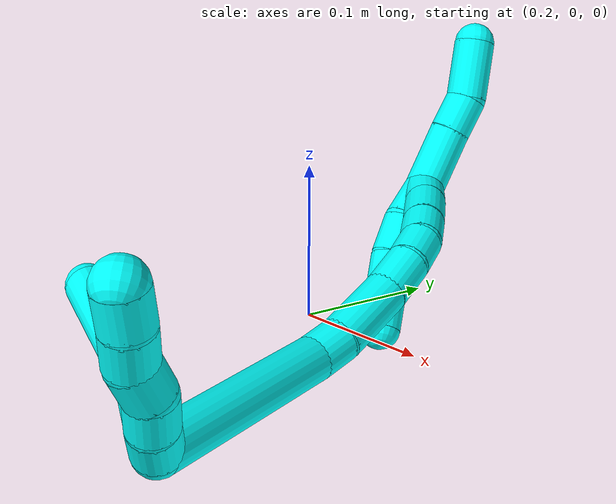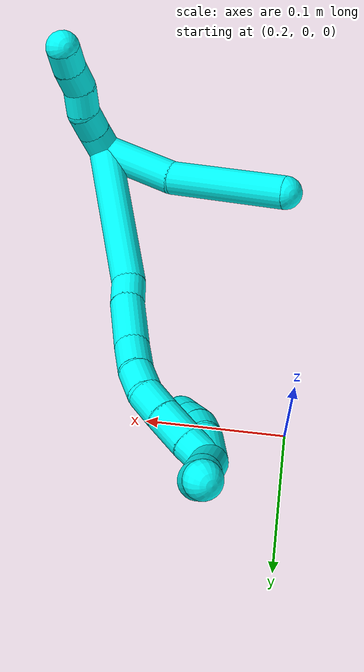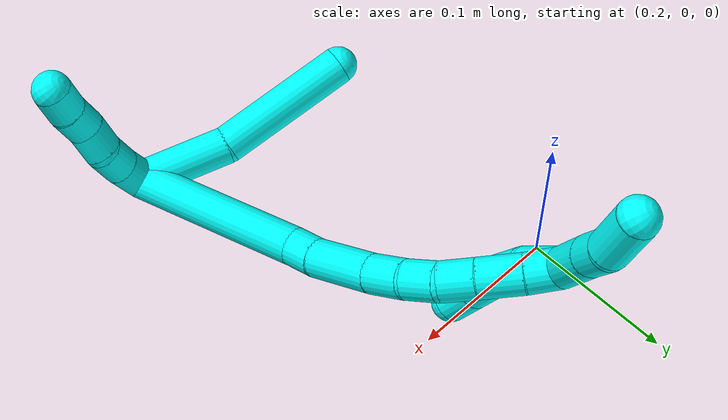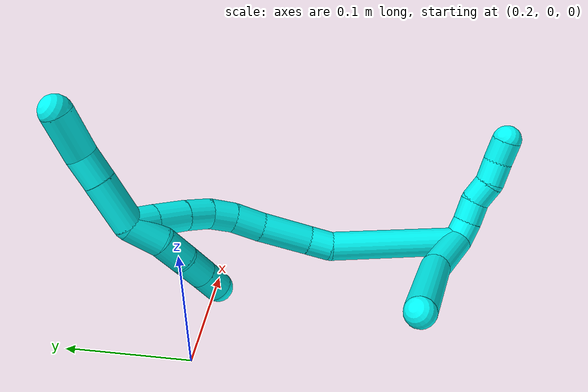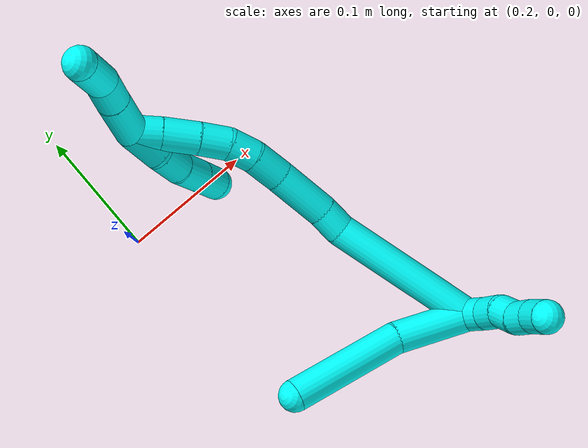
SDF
<sdf version="1.7">
 <world name="default">
  <model name="3">
   <static>0</static>
   <link name="3">
    <collision name="collision-cylinder-e_1_2_8">
     <pose>0.016053 0.011861 -0.022158 -2.65009 0.568402 -1.7226</pose>
     <geometry><cylinder><radius>0.0125</radius><length>0.059644</length></cylinder></geometry>
     <surface>
      <friction><ode><mu>1.16</mu><mu2>1.16</mu2><slip1>0</slip1><slip2>0</slip2></ode></friction>
      <contact><ode><kp>1e+06</kp><kd>1</kd><max_vel>0</max_vel><min_depth>0.001</min_depth></ode></contact>
     </surface>
    </collision>
    <visual name="visual-cylinder-e_1_2_8">
     <pose>0.016053 0.011861 -0.022158 -2.65009 0.568402 -1.7226</pose>
     <geometry><cylinder><radius>0.0125</radius><length>0.059644</length></cylinder></geometry>
     <material><ambient>0.003922 1 0.996078 1</ambient></material>
    </visual>
    <collision name="collision-cylinder-e_2_8_6">
     <pose>0.060919 0.032151 -0.078076 -2.89694 0.691621 -2.48392</pose>
     <geometry><cylinder><radius>0.0125</radius><length>0.090356</length></cylinder></geometry>
     <surface>
      <friction><ode><mu>1.16</mu><mu2>1.16</mu2><slip1>0</slip1><slip2>0</slip2></ode></friction>
      <contact><ode><kp>1e+06</kp><kd>1</kd><max_vel>0</max_vel><min_depth>0.001</min_depth></ode></contact>
     </surface>
    </collision>
    <visual name="visual-cylinder-e_2_8_6">
     <pose>0.060919 0.032151 -0.078076 -2.89694 0.691621 -2.48392</pose>
     <geometry><cylinder><radius>0.0125</radius><length>0.090356</length></cylinder></geometry>
     <material><ambient>0.003922 1 0.996078 1</ambient></material>
    </visual>
    <collision name="collision-cylinder-e_1_2_9">
     <pose>-0.003895 -0.009018 -0.001871 1.77541 -0.400126 -0.488408</pose>
     <geometry><cylinder><radius>0.0125</radius><length>0.02</length></cylinder></geometry>
     <surface>
      <friction><ode><mu>1.16</mu><mu2>1.16</mu2><slip1>0</slip1><slip2>0</slip2></ode></friction>
      <contact><ode><kp>1e+06</kp><kd>1</kd><max_vel>0</max_vel><min_depth>0.001</min_depth></ode></contact>
     </surface>
    </collision>
    <visual name="visual-cylinder-e_1_2_9">
     <pose>-0.003895 -0.009018 -0.001871 1.77541 -0.400126 -0.488408</pose>
     <geometry><cylinder><radius>0.0125</radius><length>0.02</length></cylinder></geometry>
     <material><ambient>0.003922 1 0.996078 1</ambient></material>
    </visual>
    <collision name="collision-cylinder-e_2_9_10">
     <pose>-0.011739 -0.026561 -0.007168 1.95287 -0.405855 -0.591025</pose>
     <geometry><cylinder><radius>0.0125</radius><length>0.02</length></cylinder></geometry>
     <surface>
      <friction><ode><mu>1.16</mu><mu2>1.16</mu2><slip1>0</slip1><slip2>0</slip2></ode></friction>
      <contact><ode><kp>1e+06</kp><kd>1</kd><max_vel>0</max_vel><min_depth>0.001</min_depth></ode></contact>
     </surface>
    </collision>
    <visual name="visual-cylinder-e_2_9_10">
     <pose>-0.011739 -0.026561 -0.007168 1.95287 -0.405855 -0.591025</pose>
     <geometry><cylinder><radius>0.0125</radius><length>0.02</length></cylinder></geometry>
     <material><ambient>0.003922 1 0.996078 1</ambient></material>
    </visual>
    <collision name="collision-cylinder-e_3_10_11">
     <pose>-0.016389 -0.044634 -0.013482 1.86456 -0.070232 -0.09459</pose>
     <geometry><cylinder><radius>0.0125</radius><length>0.02</length></cylinder></geometry>
     <surface>
      <friction><ode><mu>1.16</mu><mu2>1.16</mu2><slip1>0</slip1><slip2>0</slip2></ode></friction>
      <contact><ode><kp>1e+06</kp><kd>1</kd><max_vel>0</max_vel><min_depth>0.001</min_depth></ode></contact>
     </surface>
    </collision>
    <visual name="visual-cylinder-e_3_10_11">
     <pose>-0.016389 -0.044634 -0.013482 1.86456 -0.070232 -0.09459</pose>
     <geometry><cylinder><radius>0.0125</radius><length>0.02</length></cylinder></geometry>
     <material><ambient>0.003922 1 0.996078 1</ambient></material>
    </visual>
    <collision name="collision-cylinder-e_4_11_12">
     <pose>-0.020867 -0.062712 -0.019974 1.97052 -0.387237 -0.574994</pose>
     <geometry><cylinder><radius>0.0125</radius><length>0.02</length></cylinder></geometry>
     <surface>
      <friction><ode><mu>1.16</mu><mu2>1.16</mu2><slip1>0</slip1><slip2>0</slip2></ode></friction>
      <contact><ode><kp>1e+06</kp><kd>1</kd><max_vel>0</max_vel><min_depth>0.001</min_depth></ode></contact>
     </surface>
    </collision>
    <visual name="visual-cylinder-e_4_11_12">
     <pose>-0.020867 -0.062712 -0.019974 1.97052 -0.387237 -0.574994</pose>
     <geometry><cylinder><radius>0.0125</radius><length>0.02</length></cylinder></geometry>
     <material><ambient>0.003922 1 0.996078 1</ambient></material>
    </visual>
    <collision name="collision-cylinder-e_5_12_5">
     <pose>-0.027337 -0.079711 -0.028161 2.06678 -0.272774 -0.452711</pose>
     <geometry><cylinder><radius>0.0125</radius><length>0.02</length></cylinder></geometry>
     <surface>
      <friction><ode><mu>1.16</mu><mu2>1.16</mu2><slip1>0</slip1><slip2>0</slip2></ode></friction>
      <contact><ode><kp>1e+06</kp><kd>1</kd><max_vel>0</max_vel><min_depth>0.001</min_depth></ode></contact>
     </surface>
    </collision>
    <visual name="visual-cylinder-e_5_12_5">
     <pose>-0.027337 -0.079711 -0.028161 2.06678 -0.272774 -0.452711</pose>
     <geometry><cylinder><radius>0.0125</radius><length>0.02</length></cylinder></geometry>
     <material><ambient>0.003922 1 0.996078 1</ambient></material>
    </visual>
    <collision name="collision-cylinder-e_1_2_13">
     <pose>-0.015043 0.041723 -0.038026 -2.30987 -0.260419 0.576529</pose>
     <geometry><cylinder><radius>0.0125</radius><length>0.116842</length></cylinder></geometry>
     <surface>
      <friction><ode><mu>1.16</mu><mu2>1.16</mu2><slip1>0</slip1><slip2>0</slip2></ode></friction>
      <contact><ode><kp>1e+06</kp><kd>1</kd><max_vel>0</max_vel><min_depth>0.001</min_depth></ode></contact>
     </surface>
    </collision>
    <visual name="visual-cylinder-e_1_2_13">
     <pose>-0.015043 0.041723 -0.038026 -2.30987 -0.260419 0.576529</pose>
     <geometry><cylinder><radius>0.0125</radius><length>0.116842</length></cylinder></geometry>
     <material><ambient>0.003922 1 0.996078 1</ambient></material>
    </visual>
    <collision name="collision-cylinder-e_2_13_14">
     <pose>-0.034904 0.088701 -0.083492 -2.52661 -0.486549 1.32677</pose>
     <geometry><cylinder><radius>0.0125</radius><length>0.02061</length></cylinder></geometry>
     <surface>
      <friction><ode><mu>1.16</mu><mu2>1.16</mu2><slip1>0</slip1><slip2>0</slip2></ode></friction>
      <contact><ode><kp>1e+06</kp><kd>1</kd><max_vel>0</max_vel><min_depth>0.001</min_depth></ode></contact>
     </surface>
    </collision>
    <visual name="visual-cylinder-e_2_13_14">
     <pose>-0.034904 0.088701 -0.083492 -2.52661 -0.486549 1.32677</pose>
     <geometry><cylinder><radius>0.0125</radius><length>0.02061</length></cylinder></geometry>
     <material><ambient>0.003922 1 0.996078 1</ambient></material>
    </visual>
    <collision name="collision-cylinder-e_3_14_15">
     <pose>-0.047735 0.103926 -0.108799 -2.63267 -0.373257 1.25589</pose>
     <geometry><cylinder><radius>0.0125</radius><length>0.043946</length></cylinder></geometry>
     <surface>
      <friction><ode><mu>1.16</mu><mu2>1.16</mu2><slip1>0</slip1><slip2>0</slip2></ode></friction>
      <contact><ode><kp>1e+06</kp><kd>1</kd><max_vel>0</max_vel><min_depth>0.001</min_depth></ode></contact>
     </surface>
    </collision>
    <visual name="visual-cylinder-e_3_14_15">
     <pose>-0.047735 0.103926 -0.108799 -2.63267 -0.373257 1.25589</pose>
     <geometry><cylinder><radius>0.0125</radius><length>0.043946</length></cylinder></geometry>
     <material><ambient>0.003922 1 0.996078 1</ambient></material>
    </visual>
    <collision name="collision-cylinder-e_4_15_16">
     <pose>-0.0601 0.118704 -0.137777 -2.73314 -0.34514 1.39919</pose>
     <geometry><cylinder><radius>0.0125</radius><length>0.025731</length></cylinder></geometry>
     <surface>
      <friction><ode><mu>1.16</mu><mu2>1.16</mu2><slip1>0</slip1><slip2>0</slip2></ode></friction>
      <contact><ode><kp>1e+06</kp><kd>1</kd><max_vel>0</max_vel><min_depth>0.001</min_depth></ode></contact>
     </surface>
    </collision>
    <visual name="visual-cylinder-e_4_15_16">
     <pose>-0.0601 0.118704 -0.137777 -2.73314 -0.34514 1.39919</pose>
     <geometry><cylinder><radius>0.0125</radius><length>0.025731</length></cylinder></geometry>
     <material><ambient>0.003922 1 0.996078 1</ambient></material>
    </visual>
    <collision name="collision-cylinder-e_5_16_17">
     <pose>-0.066199 0.128427 -0.158291 -2.65993 -0.163153 0.642715</pose>
     <geometry><cylinder><radius>0.0125</radius><length>0.021505</length></cylinder></geometry>
     <surface>
      <friction><ode><mu>1.16</mu><mu2>1.16</mu2><slip1>0</slip1><slip2>0</slip2></ode></friction>
      <contact><ode><kp>1e+06</kp><kd>1</kd><max_vel>0</max_vel><min_depth>0.001</min_depth></ode></contact>
     </surface>
    </collision>
    <visual name="visual-cylinder-e_5_16_17">
     <pose>-0.066199 0.128427 -0.158291 -2.65993 -0.163153 0.642715</pose>
     <geometry><cylinder><radius>0.0125</radius><length>0.021505</length></cylinder></geometry>
     <material><ambient>0.003922 1 0.996078 1</ambient></material>
    </visual>
    <collision name="collision-cylinder-e_6_17_18">
     <pose>-0.066632 0.138861 -0.177365 -2.62302 0.117428 -0.436155</pose>
     <geometry><cylinder><radius>0.0125</radius><length>0.022426</length></cylinder></geometry>
     <surface>
      <friction><ode><mu>1.16</mu><mu2>1.16</mu2><slip1>0</slip1><slip2>0</slip2></ode></friction>
      <contact><ode><kp>1e+06</kp><kd>1</kd><max_vel>0</max_vel><min_depth>0.001</min_depth></ode></contact>
     </surface>
    </collision>
    <visual name="visual-cylinder-e_6_17_18">
     <pose>-0.066632 0.138861 -0.177365 -2.62302 0.117428 -0.436155</pose>
     <geometry><cylinder><radius>0.0125</radius><length>0.022426</length></cylinder></geometry>
     <material><ambient>0.003922 1 0.996078 1</ambient></material>
    </visual>
    <collision name="collision-cylinder-e_7_18_19">
     <pose>-0.062974 0.151626 -0.198678 -2.58487 0.169343 -0.577393</pose>
     <geometry><cylinder><radius>0.0125</radius><length>0.027821</length></cylinder></geometry>
     <surface>
      <friction><ode><mu>1.16</mu><mu2>1.16</mu2><slip1>0</slip1><slip2>0</slip2></ode></friction>
      <contact><ode><kp>1e+06</kp><kd>1</kd><max_vel>0</max_vel><min_depth>0.001</min_depth></ode></contact>
     </surface>
    </collision>
    <visual name="visual-cylinder-e_7_18_19">
     <pose>-0.062974 0.151626 -0.198678 -2.58487 0.169343 -0.577393</pose>
     <geometry><cylinder><radius>0.0125</radius><length>0.027821</length></cylinder></geometry>
     <material><ambient>0.003922 1 0.996078 1</ambient></material>
    </visual>
    <collision name="collision-cylinder-e_8_19_1">
     <pose>-0.058144 0.164025 -0.219193 -2.61545 0.237665 -0.834585</pose>
     <geometry><cylinder><radius>0.0125</radius><length>0.021118</length></cylinder></geometry>
     <surface>
      <friction><ode><mu>1.16</mu><mu2>1.16</mu2><slip1>0</slip1><slip2>0</slip2></ode></friction>
      <contact><ode><kp>1e+06</kp><kd>1</kd><max_vel>0</max_vel><min_depth>0.001</min_depth></ode></contact>
     </surface>
    </collision>
    <visual name="visual-cylinder-e_8_19_1">
     <pose>-0.058144 0.164025 -0.219193 -2.61545 0.237665 -0.834585</pose>
     <geometry><cylinder><radius>0.0125</radius><length>0.021118</length></cylinder></geometry>
     <material><ambient>0.003922 1 0.996078 1</ambient></material>
    </visual>
    <collision name="collision-cylinder-e_1_1_20">
     <pose>-0.065522 0.163949 -0.244802 2.83873 -0.512491 -2.0868</pose>
     <geometry><cylinder><radius>0.0125</radius><length>0.040235</length></cylinder></geometry>
     <surface>
      <friction><ode><mu>1.16</mu><mu2>1.16</mu2><slip1>0</slip1><slip2>0</slip2></ode></friction>
      <contact><ode><kp>1e+06</kp><kd>1</kd><max_vel>0</max_vel><min_depth>0.001</min_depth></ode></contact>
     </surface>
    </collision>
    <visual name="visual-cylinder-e_1_1_20">
     <pose>-0.065522 0.163949 -0.244802 2.83873 -0.512491 -2.0868</pose>
     <geometry><cylinder><radius>0.0125</radius><length>0.040235</length></cylinder></geometry>
     <material><ambient>0.003922 1 0.996078 1</ambient></material>
    </visual>
    <collision name="collision-cylinder-e_2_20_21">
     <pose>-0.081406 0.155968 -0.271042 2.85973 -0.546499 -2.20438</pose>
     <geometry><cylinder><radius>0.0125</radius><length>0.023165</length></cylinder></geometry>
     <surface>
      <friction><ode><mu>1.16</mu><mu2>1.16</mu2><slip1>0</slip1><slip2>0</slip2></ode></friction>
      <contact><ode><kp>1e+06</kp><kd>1</kd><max_vel>0</max_vel><min_depth>0.001</min_depth></ode></contact>
     </surface>
    </collision>
    <visual name="visual-cylinder-e_2_20_21">
     <pose>-0.081406 0.155968 -0.271042 2.85973 -0.546499 -2.20438</pose>
     <geometry><cylinder><radius>0.0125</radius><length>0.023165</length></cylinder></geometry>
     <material><ambient>0.003922 1 0.996078 1</ambient></material>
    </visual>
    <collision name="collision-cylinder-e_3_21_4">
     <pose>-0.092201 0.145906 -0.29663 2.71505 -0.264012 -1.1</pose>
     <geometry><cylinder><radius>0.0125</radius><length>0.0366</length></cylinder></geometry>
     <surface>
      <friction><ode><mu>1.16</mu><mu2>1.16</mu2><slip1>0</slip1><slip2>0</slip2></ode></friction>
      <contact><ode><kp>1e+06</kp><kd>1</kd><max_vel>0</max_vel><min_depth>0.001</min_depth></ode></contact>
     </surface>
    </collision>
    <visual name="visual-cylinder-e_3_21_4">
     <pose>-0.092201 0.145906 -0.29663 2.71505 -0.264012 -1.1</pose>
     <geometry><cylinder><radius>0.0125</radius><length>0.0366</length></cylinder></geometry>
     <material><ambient>0.003922 1 0.996078 1</ambient></material>
    </visual>
    <collision name="collision-cylinder-e_1_1_22">
     <pose>-0.050429 0.1664 -0.21514 0.211736 0.376596 0.040493</pose>
     <geometry><cylinder><radius>0.0125</radius><length>0.028438</length></cylinder></geometry>
     <surface>
      <friction><ode><mu>1.16</mu><mu2>1.16</mu2><slip1>0</slip1><slip2>0</slip2></ode></friction>
      <contact><ode><kp>1e+06</kp><kd>1</kd><max_vel>0</max_vel><min_depth>0.001</min_depth></ode></contact>
     </surface>
    </collision>
    <visual name="visual-cylinder-e_1_1_22">
     <pose>-0.050429 0.1664 -0.21514 0.211736 0.376596 0.040493</pose>
     <geometry><cylinder><radius>0.0125</radius><length>0.028438</length></cylinder></geometry>
     <material><ambient>0.003922 1 0.996078 1</ambient></material>
    </visual>
    <collision name="collision-cylinder-e_2_22_23">
     <pose>-0.041508 0.164088 -0.190441 -0.039667 0.303683 -0.006071</pose>
     <geometry><cylinder><radius>0.0125</radius><length>0.024692</length></cylinder></geometry>
     <surface>
      <friction><ode><mu>1.16</mu><mu2>1.16</mu2><slip1>0</slip1><slip2>0</slip2></ode></friction>
      <contact><ode><kp>1e+06</kp><kd>1</kd><max_vel>0</max_vel><min_depth>0.001</min_depth></ode></contact>
     </surface>
    </collision>
    <visual name="visual-cylinder-e_2_22_23">
     <pose>-0.041508 0.164088 -0.190441 -0.039667 0.303683 -0.006071</pose>
     <geometry><cylinder><radius>0.0125</radius><length>0.024692</length></cylinder></geometry>
     <material><ambient>0.003922 1 0.996078 1</ambient></material>
    </visual>
    <collision name="collision-cylinder-e_3_23_24">
     <pose>-0.036057 0.16599 -0.166697 -0.119265 0.144851 -0.008663</pose>
     <geometry><cylinder><radius>0.0125</radius><length>0.024373</length></cylinder></geometry>
     <surface>
      <friction><ode><mu>1.16</mu><mu2>1.16</mu2><slip1>0</slip1><slip2>0</slip2></ode></friction>
      <contact><ode><kp>1e+06</kp><kd>1</kd><max_vel>0</max_vel><min_depth>0.001</min_depth></ode></contact>
     </surface>
    </collision>
    <visual name="visual-cylinder-e_3_23_24">
     <pose>-0.036057 0.16599 -0.166697 -0.119265 0.144851 -0.008663</pose>
     <geometry><cylinder><radius>0.0125</radius><length>0.024373</length></cylinder></geometry>
     <material><ambient>0.003922 1 0.996078 1</ambient></material>
    </visual>
    <collision name="collision-cylinder-e_4_24_3">
     <pose>-0.032478 0.168878 -0.143718 -0.131273 0.162456 -0.010702</pose>
     <geometry><cylinder><radius>0.0125</radius><length>0.022498</length></cylinder></geometry>
     <surface>
      <friction><ode><mu>1.16</mu><mu2>1.16</mu2><slip1>0</slip1><slip2>0</slip2></ode></friction>
      <contact><ode><kp>1e+06</kp><kd>1</kd><max_vel>0</max_vel><min_depth>0.001</min_depth></ode></contact>
     </surface>
    </collision>
    <visual name="visual-cylinder-e_4_24_3">
     <pose>-0.032478 0.168878 -0.143718 -0.131273 0.162456 -0.010702</pose>
     <geometry><cylinder><radius>0.0125</radius><length>0.022498</length></cylinder></geometry>
     <material><ambient>0.003922 1 0.996078 1</ambient></material>
    </visual>
    <collision name="collision-sphere-3">
     <pose>-0.030659 0.170331 -0.132713 0 -0 0</pose>
     <geometry><sphere><radius>0.0125</radius></sphere></geometry>
     <surface>
      <friction><ode><mu>1.16</mu><mu2>1.16</mu2><slip1>0</slip1><slip2>0</slip2></ode></friction>
      <contact><ode><kp>1e+06</kp><kd>1</kd><max_vel>0</max_vel><min_depth>0.001</min_depth></ode></contact>
     </surface>
    </collision>
    <visual name="visual-sphere-3">
     <pose>-0.030659 0.170331 -0.132713 0 -0 0</pose>
     <geometry><sphere><radius>0.0125</radius></sphere></geometry>
     <material><ambient>0.003922 1 0.996078 1</ambient></material>
    </visual>
    <collision name="collision-sphere-24">
     <pose>-0.034298 0.167425 -0.154723 0 -0 0</pose>
     <geometry><sphere><radius>0.0125</radius></sphere></geometry>
     <surface>
      <friction><ode><mu>1.16</mu><mu2>1.16</mu2><slip1>0</slip1><slip2>0</slip2></ode></friction>
      <contact><ode><kp>1e+06</kp><kd>1</kd><max_vel>0</max_vel><min_depth>0.001</min_depth></ode></contact>
     </surface>
    </collision>
    <visual name="visual-sphere-24">
     <pose>-0.034298 0.167425 -0.154723 0 -0 0</pose>
     <geometry><sphere><radius>0.0125</radius></sphere></geometry>
     <material><ambient>0.003922 1 0.996078 1</ambient></material>
    </visual>
    <collision name="collision-sphere-23">
     <pose>-0.037816 0.164555 -0.17867 0 -0 0</pose>
     <geometry><sphere><radius>0.0125</radius></sphere></geometry>
     <surface>
      <friction><ode><mu>1.16</mu><mu2>1.16</mu2><slip1>0</slip1><slip2>0</slip2></ode></friction>
      <contact><ode><kp>1e+06</kp><kd>1</kd><max_vel>0</max_vel><min_depth>0.001</min_depth></ode></contact>
     </surface>
    </collision>
    <visual name="visual-sphere-23">
     <pose>-0.037816 0.164555 -0.17867 0 -0 0</pose>
     <geometry><sphere><radius>0.0125</radius></sphere></geometry>
     <material><ambient>0.003922 1 0.996078 1</ambient></material>
    </visual>
    <collision name="collision-sphere-22">
     <pose>-0.0452 0.163621 -0.202213 0 -0 0</pose>
     <geometry><sphere><radius>0.0125</radius></sphere></geometry>
     <surface>
      <friction><ode><mu>1.16</mu><mu2>1.16</mu2><slip1>0</slip1><slip2>0</slip2></ode></friction>
      <contact><ode><kp>1e+06</kp><kd>1</kd><max_vel>0</max_vel><min_depth>0.001</min_depth></ode></contact>
     </surface>
    </collision>
    <visual name="visual-sphere-22">
     <pose>-0.0452 0.163621 -0.202213 0 -0 0</pose>
     <geometry><sphere><radius>0.0125</radius></sphere></geometry>
     <material><ambient>0.003922 1 0.996078 1</ambient></material>
    </visual>
    <collision name="collision-sphere-4">
     <pose>-0.096977 0.138598 -0.312713 0 -0 0</pose>
     <geometry><sphere><radius>0.0125</radius></sphere></geometry>
     <surface>
      <friction><ode><mu>1.16</mu><mu2>1.16</mu2><slip1>0</slip1><slip2>0</slip2></ode></friction>
      <contact><ode><kp>1e+06</kp><kd>1</kd><max_vel>0</max_vel><min_depth>0.001</min_depth></ode></contact>
     </surface>
    </collision>
    <visual name="visual-sphere-4">
     <pose>-0.096977 0.138598 -0.312713 0 -0 0</pose>
     <geometry><sphere><radius>0.0125</radius></sphere></geometry>
     <material><ambient>0.003922 1 0.996078 1</ambient></material>
    </visual>
    <collision name="collision-sphere-21">
     <pose>-0.087426 0.153215 -0.280547 0 -0 0</pose>
     <geometry><sphere><radius>0.0125</radius></sphere></geometry>
     <surface>
      <friction><ode><mu>1.16</mu><mu2>1.16</mu2><slip1>0</slip1><slip2>0</slip2></ode></friction>
      <contact><ode><kp>1e+06</kp><kd>1</kd><max_vel>0</max_vel><min_depth>0.001</min_depth></ode></contact>
     </surface>
    </collision>
    <visual name="visual-sphere-21">
     <pose>-0.087426 0.153215 -0.280547 0 -0 0</pose>
     <geometry><sphere><radius>0.0125</radius></sphere></geometry>
     <material><ambient>0.003922 1 0.996078 1</ambient></material>
    </visual>
    <collision name="collision-sphere-20">
     <pose>-0.075387 0.15872 -0.261537 0 -0 0</pose>
     <geometry><sphere><radius>0.0125</radius></sphere></geometry>
     <surface>
      <friction><ode><mu>1.16</mu><mu2>1.16</mu2><slip1>0</slip1><slip2>0</slip2></ode></friction>
      <contact><ode><kp>1e+06</kp><kd>1</kd><max_vel>0</max_vel><min_depth>0.001</min_depth></ode></contact>
     </surface>
    </collision>
    <visual name="visual-sphere-20">
     <pose>-0.075387 0.15872 -0.261537 0 -0 0</pose>
     <geometry><sphere><radius>0.0125</radius></sphere></geometry>
     <material><ambient>0.003922 1 0.996078 1</ambient></material>
    </visual>
    <collision name="collision-sphere-11">
     <pose>-0.01709 -0.054182 -0.016371 0 -0 0</pose>
     <geometry><sphere><radius>0.0125</radius></sphere></geometry>
     <surface>
      <friction><ode><mu>1.16</mu><mu2>1.16</mu2><slip1>0</slip1><slip2>0</slip2></ode></friction>
      <contact><ode><kp>1e+06</kp><kd>1</kd><max_vel>0</max_vel><min_depth>0.001</min_depth></ode></contact>
     </surface>
    </collision>
    <visual name="visual-sphere-11">
     <pose>-0.01709 -0.054182 -0.016371 0 -0 0</pose>
     <geometry><sphere><radius>0.0125</radius></sphere></geometry>
     <material><ambient>0.003922 1 0.996078 1</ambient></material>
    </visual>
    <collision name="collision-sphere-10">
     <pose>-0.015687 -0.035086 -0.010594 0 -0 0</pose>
     <geometry><sphere><radius>0.0125</radius></sphere></geometry>
     <surface>
      <friction><ode><mu>1.16</mu><mu2>1.16</mu2><slip1>0</slip1><slip2>0</slip2></ode></friction>
      <contact><ode><kp>1e+06</kp><kd>1</kd><max_vel>0</max_vel><min_depth>0.001</min_depth></ode></contact>
     </surface>
    </collision>
    <visual name="visual-sphere-10">
     <pose>-0.015687 -0.035086 -0.010594 0 -0 0</pose>
     <geometry><sphere><radius>0.0125</radius></sphere></geometry>
     <material><ambient>0.003922 1 0.996078 1</ambient></material>
    </visual>
    <collision name="collision-sphere-6">
     <pose>0.089733 0.040579 -0.111837 0 -0 0</pose>
     <geometry><sphere><radius>0.0125</radius></sphere></geometry>
     <surface>
      <friction><ode><mu>1.16</mu><mu2>1.16</mu2><slip1>0</slip1><slip2>0</slip2></ode></friction>
      <contact><ode><kp>1e+06</kp><kd>1</kd><max_vel>0</max_vel><min_depth>0.001</min_depth></ode></contact>
     </surface>
    </collision>
    <visual name="visual-sphere-6">
     <pose>0.089733 0.040579 -0.111837 0 -0 0</pose>
     <geometry><sphere><radius>0.0125</radius></sphere></geometry>
     <material><ambient>0.003922 1 0.996078 1</ambient></material>
    </visual>
    <collision name="collision-sphere-9">
     <pose>-0.007791 -0.018036 -0.003743 0 -0 0</pose>
     <geometry><sphere><radius>0.0125</radius></sphere></geometry>
     <surface>
      <friction><ode><mu>1.16</mu><mu2>1.16</mu2><slip1>0</slip1><slip2>0</slip2></ode></friction>
      <contact><ode><kp>1e+06</kp><kd>1</kd><max_vel>0</max_vel><min_depth>0.001</min_depth></ode></contact>
     </surface>
    </collision>
    <visual name="visual-sphere-9">
     <pose>-0.007791 -0.018036 -0.003743 0 -0 0</pose>
     <geometry><sphere><radius>0.0125</radius></sphere></geometry>
     <material><ambient>0.003922 1 0.996078 1</ambient></material>
    </visual>
    <collision name="collision-sphere-2">
     <geometry><sphere><radius>0.0125</radius></sphere></geometry>
     <surface>
      <friction><ode><mu>1.16</mu><mu2>1.16</mu2><slip1>0</slip1><slip2>0</slip2></ode></friction>
      <contact><ode><kp>1e+06</kp><kd>1</kd><max_vel>0</max_vel><min_depth>0.001</min_depth></ode></contact>
     </surface>
    </collision>
    <visual name="visual-sphere-2">
     <geometry><sphere><radius>0.0125</radius></sphere></geometry>
     <material><ambient>0.003922 1 0.996078 1</ambient></material>
    </visual>
    <collision name="collision-sphere-19">
     <pose>-0.06063 0.158871 -0.210319 0 -0 0</pose>
     <geometry><sphere><radius>0.0125</radius></sphere></geometry>
     <surface>
      <friction><ode><mu>1.16</mu><mu2>1.16</mu2><slip1>0</slip1><slip2>0</slip2></ode></friction>
      <contact><ode><kp>1e+06</kp><kd>1</kd><max_vel>0</max_vel><min_depth>0.001</min_depth></ode></contact>
     </surface>
    </collision>
    <visual name="visual-sphere-19">
     <pose>-0.06063 0.158871 -0.210319 0 -0 0</pose>
     <geometry><sphere><radius>0.0125</radius></sphere></geometry>
     <material><ambient>0.003922 1 0.996078 1</ambient></material>
    </visual>
    <collision name="collision-sphere-8">
     <pose>0.032105 0.023723 -0.044315 0 -0 0</pose>
     <geometry><sphere><radius>0.0125</radius></sphere></geometry>
     <surface>
      <friction><ode><mu>1.16</mu><mu2>1.16</mu2><slip1>0</slip1><slip2>0</slip2></ode></friction>
      <contact><ode><kp>1e+06</kp><kd>1</kd><max_vel>0</max_vel><min_depth>0.001</min_depth></ode></contact>
     </surface>
    </collision>
    <visual name="visual-sphere-8">
     <pose>0.032105 0.023723 -0.044315 0 -0 0</pose>
     <geometry><sphere><radius>0.0125</radius></sphere></geometry>
     <material><ambient>0.003922 1 0.996078 1</ambient></material>
    </visual>
    <collision name="collision-sphere-12">
     <pose>-0.024643 -0.071242 -0.023578 0 -0 0</pose>
     <geometry><sphere><radius>0.0125</radius></sphere></geometry>
     <surface>
      <friction><ode><mu>1.16</mu><mu2>1.16</mu2><slip1>0</slip1><slip2>0</slip2></ode></friction>
      <contact><ode><kp>1e+06</kp><kd>1</kd><max_vel>0</max_vel><min_depth>0.001</min_depth></ode></contact>
     </surface>
    </collision>
    <visual name="visual-sphere-12">
     <pose>-0.024643 -0.071242 -0.023578 0 -0 0</pose>
     <geometry><sphere><radius>0.0125</radius></sphere></geometry>
     <material><ambient>0.003922 1 0.996078 1</ambient></material>
    </visual>
    <collision name="collision-sphere-5">
     <pose>-0.030031 -0.088181 -0.032744 0 -0 0</pose>
     <geometry><sphere><radius>0.0125</radius></sphere></geometry>
     <surface>
      <friction><ode><mu>1.16</mu><mu2>1.16</mu2><slip1>0</slip1><slip2>0</slip2></ode></friction>
      <contact><ode><kp>1e+06</kp><kd>1</kd><max_vel>0</max_vel><min_depth>0.001</min_depth></ode></contact>
     </surface>
    </collision>
    <visual name="visual-sphere-5">
     <pose>-0.030031 -0.088181 -0.032744 0 -0 0</pose>
     <geometry><sphere><radius>0.0125</radius></sphere></geometry>
     <material><ambient>0.003922 1 0.996078 1</ambient></material>
    </visual>
    <collision name="collision-sphere-13">
     <pose>-0.030085 0.083446 -0.076051 0 -0 0</pose>
     <geometry><sphere><radius>0.0125</radius></sphere></geometry>
     <surface>
      <friction><ode><mu>1.16</mu><mu2>1.16</mu2><slip1>0</slip1><slip2>0</slip2></ode></friction>
      <contact><ode><kp>1e+06</kp><kd>1</kd><max_vel>0</max_vel><min_depth>0.001</min_depth></ode></contact>
     </surface>
    </collision>
    <visual name="visual-sphere-13">
     <pose>-0.030085 0.083446 -0.076051 0 -0 0</pose>
     <geometry><sphere><radius>0.0125</radius></sphere></geometry>
     <material><ambient>0.003922 1 0.996078 1</ambient></material>
    </visual>
    <collision name="collision-sphere-14">
     <pose>-0.039722 0.093957 -0.090932 0 -0 0</pose>
     <geometry><sphere><radius>0.0125</radius></sphere></geometry>
     <surface>
      <friction><ode><mu>1.16</mu><mu2>1.16</mu2><slip1>0</slip1><slip2>0</slip2></ode></friction>
      <contact><ode><kp>1e+06</kp><kd>1</kd><max_vel>0</max_vel><min_depth>0.001</min_depth></ode></contact>
     </surface>
    </collision>
    <visual name="visual-sphere-14">
     <pose>-0.039722 0.093957 -0.090932 0 -0 0</pose>
     <geometry><sphere><radius>0.0125</radius></sphere></geometry>
     <material><ambient>0.003922 1 0.996078 1</ambient></material>
    </visual>
    <collision name="collision-sphere-15">
     <pose>-0.055747 0.113895 -0.126666 0 -0 0</pose>
     <geometry><sphere><radius>0.0125</radius></sphere></geometry>
     <surface>
      <friction><ode><mu>1.16</mu><mu2>1.16</mu2><slip1>0</slip1><slip2>0</slip2></ode></friction>
      <contact><ode><kp>1e+06</kp><kd>1</kd><max_vel>0</max_vel><min_depth>0.001</min_depth></ode></contact>
     </surface>
    </collision>
    <visual name="visual-sphere-15">
     <pose>-0.055747 0.113895 -0.126666 0 -0 0</pose>
     <geometry><sphere><radius>0.0125</radius></sphere></geometry>
     <material><ambient>0.003922 1 0.996078 1</ambient></material>
    </visual>
    <collision name="collision-sphere-16">
     <pose>-0.064453 0.123512 -0.148889 0 -0 0</pose>
     <geometry><sphere><radius>0.0125</radius></sphere></geometry>
     <surface>
      <friction><ode><mu>1.16</mu><mu2>1.16</mu2><slip1>0</slip1><slip2>0</slip2></ode></friction>
      <contact><ode><kp>1e+06</kp><kd>1</kd><max_vel>0</max_vel><min_depth>0.001</min_depth></ode></contact>
     </surface>
    </collision>
    <visual name="visual-sphere-16">
     <pose>-0.064453 0.123512 -0.148889 0 -0 0</pose>
     <geometry><sphere><radius>0.0125</radius></sphere></geometry>
     <material><ambient>0.003922 1 0.996078 1</ambient></material>
    </visual>
    <collision name="collision-sphere-17">
     <pose>-0.067946 0.133342 -0.167694 0 -0 0</pose>
     <geometry><sphere><radius>0.0125</radius></sphere></geometry>
     <surface>
      <friction><ode><mu>1.16</mu><mu2>1.16</mu2><slip1>0</slip1><slip2>0</slip2></ode></friction>
      <contact><ode><kp>1e+06</kp><kd>1</kd><max_vel>0</max_vel><min_depth>0.001</min_depth></ode></contact>
     </surface>
    </collision>
    <visual name="visual-sphere-17">
     <pose>-0.067946 0.133342 -0.167694 0 -0 0</pose>
     <geometry><sphere><radius>0.0125</radius></sphere></geometry>
     <material><ambient>0.003922 1 0.996078 1</ambient></material>
    </visual>
    <collision name="collision-sphere-18">
     <pose>-0.065319 0.144381 -0.187037 0 -0 0</pose>
     <geometry><sphere><radius>0.0125</radius></sphere></geometry>
     <surface>
      <friction><ode><mu>1.16</mu><mu2>1.16</mu2><slip1>0</slip1><slip2>0</slip2></ode></friction>
      <contact><ode><kp>1e+06</kp><kd>1</kd><max_vel>0</max_vel><min_depth>0.001</min_depth></ode></contact>
     </surface>
    </collision>
    <visual name="visual-sphere-18">
     <pose>-0.065319 0.144381 -0.187037 0 -0 0</pose>
     <geometry><sphere><radius>0.0125</radius></sphere></geometry>
     <material><ambient>0.003922 1 0.996078 1</ambient></material>
    </visual>
    <collision name="collision-sphere-1">
     <pose>-0.055658 0.169178 -0.228067 0 -0 0</pose>
     <geometry><sphere><radius>0.0125</radius></sphere></geometry>
     <surface>
      <friction><ode><mu>1.16</mu><mu2>1.16</mu2><slip1>0</slip1><slip2>0</slip2></ode></friction>
      <contact><ode><kp>1e+06</kp><kd>1</kd><max_vel>0</max_vel><min_depth>0.001</min_depth></ode></contact>
     </surface>
    </collision>
    <visual name="visual-sphere-1">
     <pose>-0.055658 0.169178 -0.228067 0 -0 0</pose>
     <geometry><sphere><radius>0.0125</radius></sphere></geometry>
     <material><ambient>0.003922 1 0.996078 1</ambient></material>
    </visual>
    <inertial>
     <pose>-0.025502 0.078961 -0.115892 0 -0 0</pose>
     <mass>0.75</mass>
     <inertia>
      <ixx>0.000111</ixx>
      <ixy>0</ixy>
      <ixz>0</ixz>
      <iyy>3.3e-05</iyy>
      <iyz>0</iyz>
      <izz>-0.000153</izz>
     </inertia>
    </inertial>
   </link>
   <pose>0.356315 -0.207286 0.019146 -2.41049 0.224057 -2.60707</pose>
  </model>
 </world>
</sdf>
